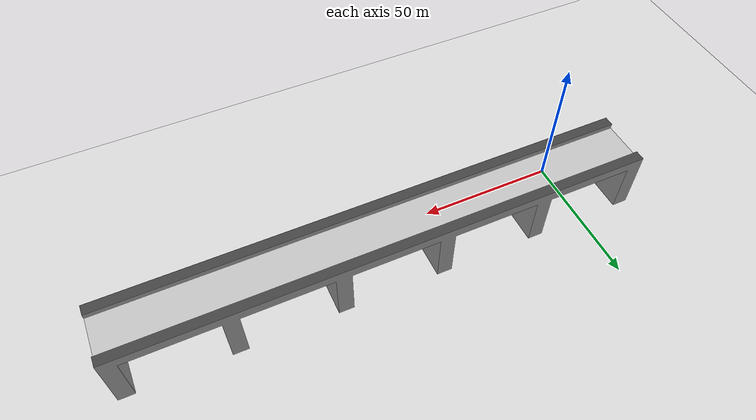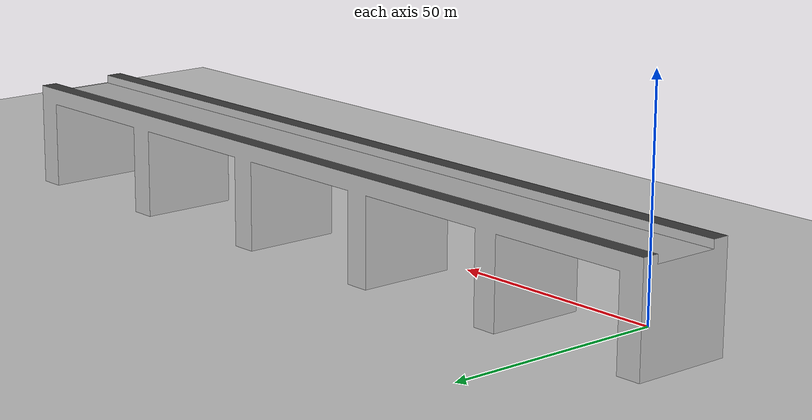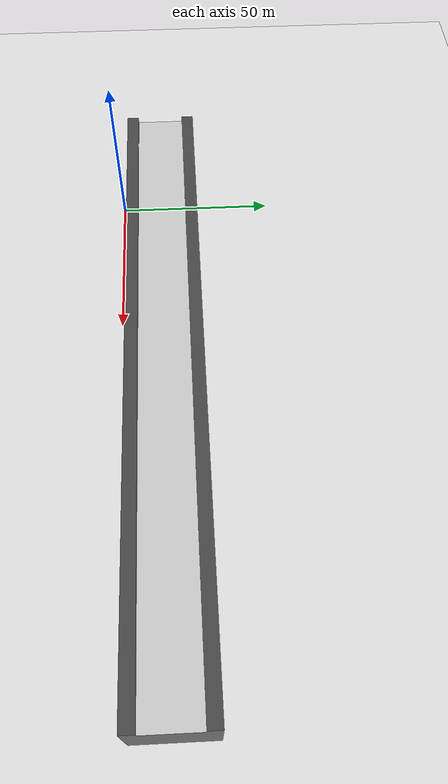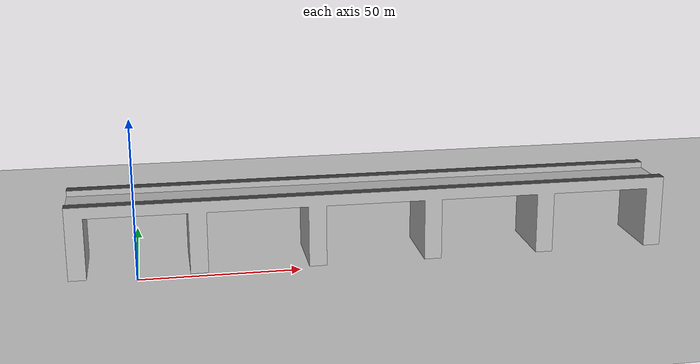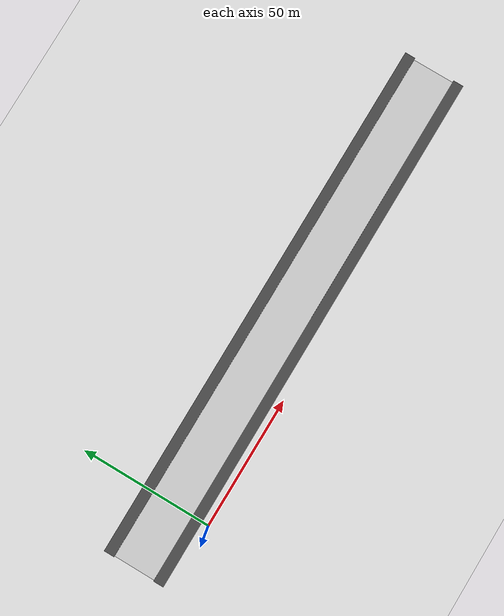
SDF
<sdf version="1.6">
 <world name="default">
  <light name="sun" type="directional">
   <pose>0 0 10 0 -0 0</pose>
   <diffuse>0.8 0.8 0.8 1</diffuse>
   <specular>0.1 0.1 0.1 1</specular>
   <attenuation>
    <range>1000</range>
    <constant>0.9</constant>
    <linear>0.01</linear>
    <quadratic>0.001</quadratic>
   </attenuation>
   <direction>-0.5 0.5 -1</direction>
  </light>
  <model name="ground_plane">
   <static>1</static>
   <link name="link">
    <collision name="collision">
     <geometry><plane><normal>0 0 1</normal><size>100 100</size></plane></geometry>
     <surface><friction><ode><mu>100</mu><mu2>50</mu2></ode></friction></surface>
    </collision>
    <visual name="visual">
     <cast_shadows>0</cast_shadows>
     <geometry><plane><normal>0 0 1</normal><size>100 100</size></plane></geometry>
     <material>
      <script><uri>file://media/materials/scripts/gazebo.material</uri><name>Gazebo/Grey</name></script>
     </material>
    </visual>
   </link>
  </model>
  <gravity>0 0 -9.8</gravity>
  <magnetic_field>6e-06 2.3e-05 -4.2e-05</magnetic_field>
  <atmosphere type="adiabatic"/>
  <physics name="default_physics" default="0" type="ode">
   <max_step_size>0.001</max_step_size>
   <real_time_factor>1</real_time_factor>
   <real_time_update_rate>1000</real_time_update_rate>
  </physics>
  <scene><ambient>0.4 0.4 0.4 1</ambient><background>0.7 0.7 0.7 1</background><shadows>1</shadows></scene>
  <spherical_coordinates>
   <surface_model>EARTH_WGS84</surface_model>
   <latitude_deg>0</latitude_deg>
   <longitude_deg>0</longitude_deg>
   <elevation>0</elevation>
   <heading_deg>0</heading_deg>
  </spherical_coordinates>
  <model name="bridge5">
   <link name="link">
    <inertial>
     <pose>0 0 0.3683 0 -0 0</pose>
     <mass>4.83076</mass>
     <inertia><ixx>515</ixx><ixy>0</ixy><ixz>0</ixz><iyy>60</iyy><iyz>0</iyz><izz>65</izz></inertia>
    </inertial>
    <visual name="visual">
     <geometry><mesh><uri>model://bridge5/meshes/bridge5.dae</uri><scale>1 1 1</scale></mesh></geometry>
    </visual>
    <collision name="collision">
     <geometry><mesh><uri>model://bridge5/meshes/bridge5.dae</uri><scale>1 1 1</scale></mesh></geometry>
    </collision>
   </link>
   <pose>-7.28828 4.2142 -1e-05 0 -0 0</pose>
  </model>
 </world>
</sdf>
